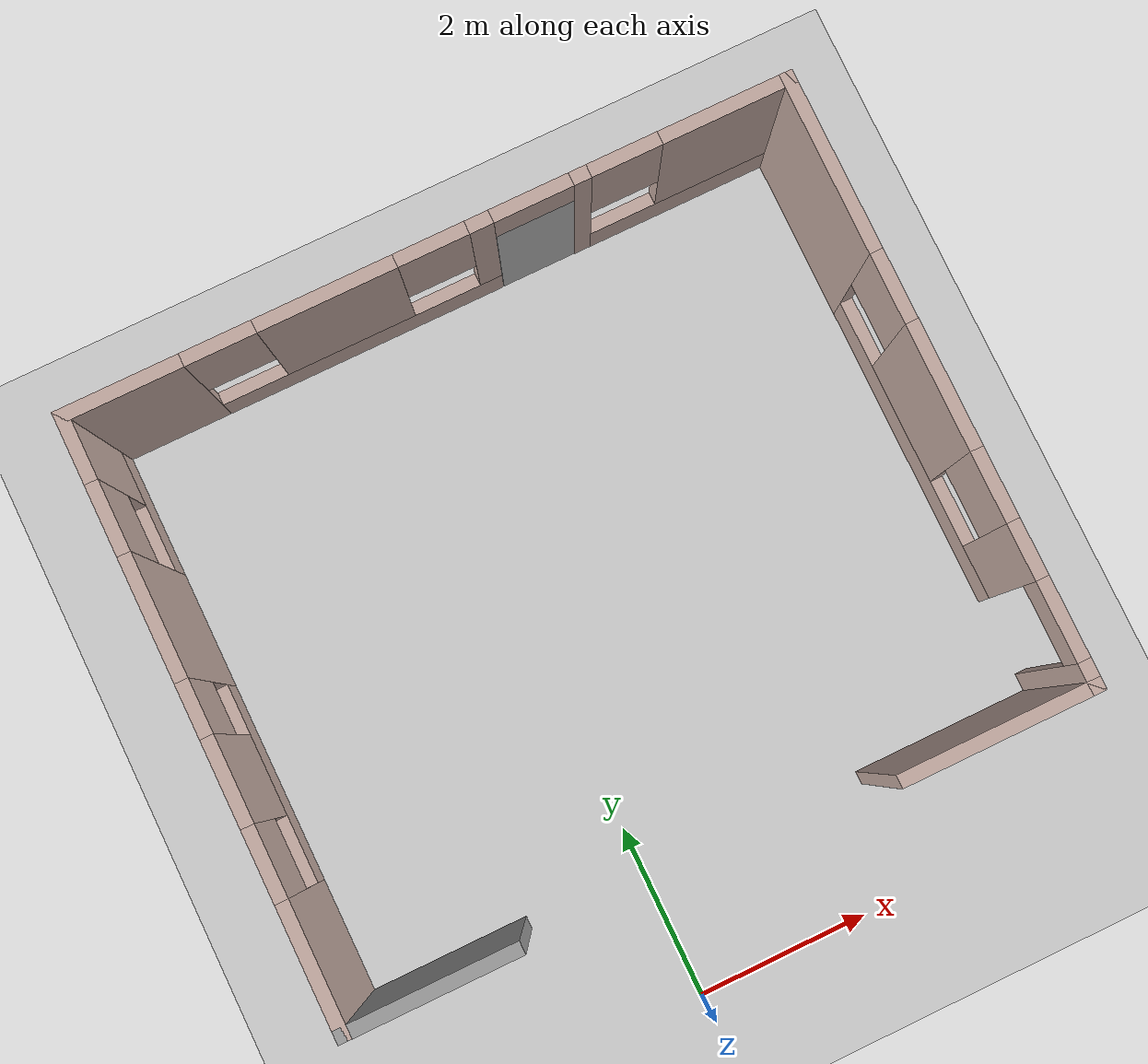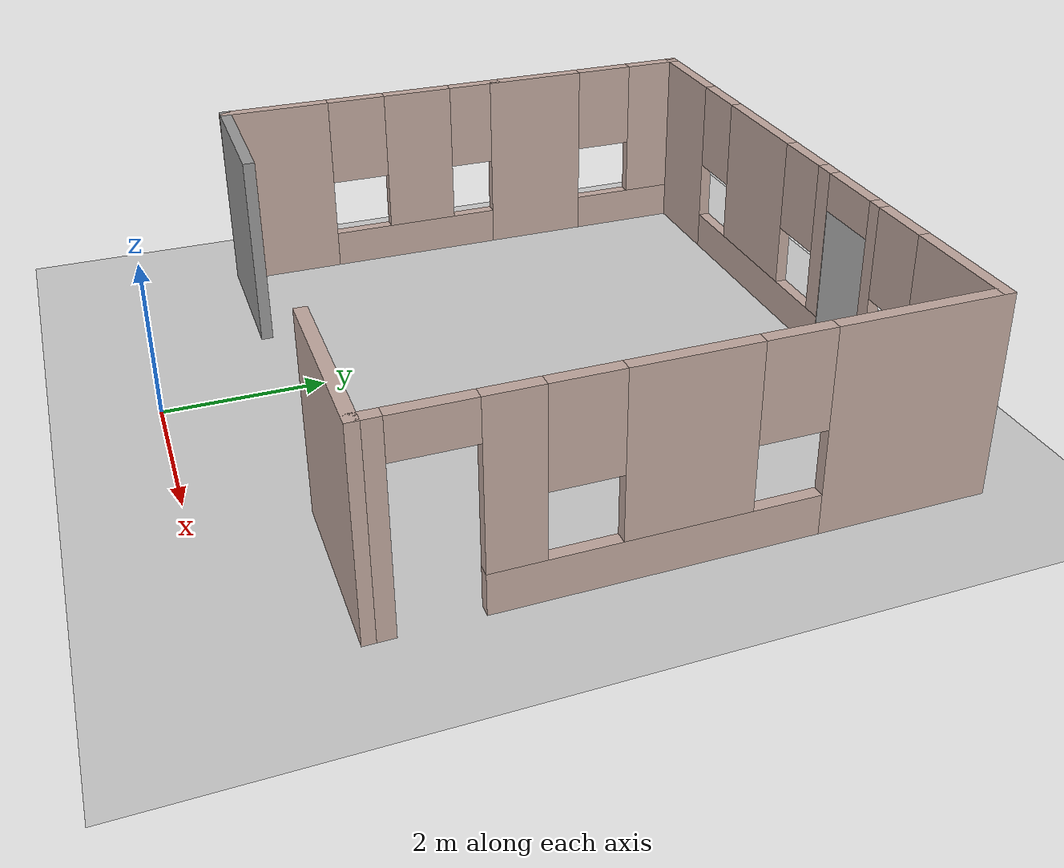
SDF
<sdf version="1.6">
 <world name="default">
  <model name="ground_plane">
   <static>1</static>
   <link name="link">
    <collision name="collision">
     <geometry><plane><normal>0 0 1</normal><size>100 100</size></plane></geometry>
     <surface><friction><ode><mu>100</mu><mu2>50</mu2></ode></friction></surface>
    </collision>
    <visual name="visual">
     <cast_shadows>0</cast_shadows>
     <geometry><plane><normal>0 0 1</normal><size>100 100</size></plane></geometry>
     <material>
      <script><uri>file://media/materials/scripts/gazebo.material</uri><name>Gazebo/Grey</name></script>
     </material>
    </visual>
   </link>
  </model>
  <model name="simpleWorld">
   <pose>0.74215 4.80433 0 0 -0 0</pose>
   <link name="Wall_10">
    <collision name="Wall_10_Collision">
     <geometry><box><size>2 0.15 2.5</size></box></geometry>
     <pose>0 0 1.25 0 -0 0</pose>
    </collision>
    <visual name="Wall_10_Visual">
     <pose>0 0 1.25 0 -0 0</pose>
     <geometry><box><size>2 0.15 2.5</size></box></geometry>
     <material>
      <script><uri>file://media/materials/scripts/gazebo.material</uri><name>Gazebo/Grey</name></script>
      <ambient>1 1 1 1</ambient>
     </material>
     <meta><layer>0</layer></meta>
    </visual>
    <pose>-3.125 -3.275 0 0 -0 0</pose>
   </link>
   <link name="Wall_3">
    <pose>-4.05 -1.35 0 0 -0 1.5708</pose>
    <visual name="Wall_3_Visual_0">
     <pose>-1.26176 0 1.25 0 -0 0</pose>
     <geometry><box><size>1.47648 0.15 2.5</size></box></geometry>
     <material>
      <script><uri>file://media/materials/scripts/gazebo.material</uri><name>Gazebo/Grey</name></script>
      <ambient>0.760784 0.662745 0.627451 1</ambient>
     </material>
     <meta><layer>0</layer></meta>
    </visual>
    <collision name="Wall_3_Collision_0">
     <geometry><box><size>1.47648 0.15 2.5</size></box></geometry>
     <pose>-1.26176 0 1.25 0 -0 0</pose>
    </collision>
    <visual name="Wall_3_Visual_1">
     <pose>0.738238 0 0.25 0 -0 0</pose>
     <geometry><box><size>2.52352 0.15 0.5</size></box></geometry>
     <material>
      <script><uri>file://media/materials/scripts/gazebo.material</uri><name>Gazebo/Grey</name></script>
      <ambient>0.760784 0.662745 0.627451 1</ambient>
     </material>
     <meta><layer>0</layer></meta>
    </visual>
    <collision name="Wall_3_Collision_1">
     <geometry><box><size>2.52352 0.15 0.5</size></box></geometry>
     <pose>0.738238 0 0.25 0 -0 0</pose>
    </collision>
    <visual name="Wall_3_Visual_2">
     <pose>0.759725 0 1.5 0 -0 0</pose>
     <geometry><box><size>0.966496 0.15 2</size></box></geometry>
     <material>
      <script><uri>file://media/materials/scripts/gazebo.material</uri><name>Gazebo/Grey</name></script>
      <ambient>0.760784 0.662745 0.627451 1</ambient>
     </material>
     <meta><layer>0</layer></meta>
    </visual>
    <collision name="Wall_3_Collision_2">
     <geometry><box><size>0.966496 0.15 2</size></box></geometry>
     <pose>0.759725 0 1.5 0 -0 0</pose>
    </collision>
    <visual name="Wall_3_Visual_3">
     <pose>0.759725 0 1.5 0 -0 0</pose>
     <geometry><box><size>0.966496 0.15 2</size></box></geometry>
     <material>
      <script><uri>file://media/materials/scripts/gazebo.material</uri><name>Gazebo/Grey</name></script>
      <ambient>0.760784 0.662745 0.627451 1</ambient>
     </material>
     <meta><layer>0</layer></meta>
    </visual>
    <collision name="Wall_3_Collision_3">
     <geometry><box><size>0.966496 0.15 2</size></box></geometry>
     <pose>0.759725 0 1.5 0 -0 0</pose>
    </collision>
    <visual name="Wall_3_Visual_4">
     <pose>-0.123523 0 1.9 0 -0 0</pose>
     <geometry><box><size>0.8 0.15 1.2</size></box></geometry>
     <material>
      <script><uri>file://media/materials/scripts/gazebo.material</uri><name>Gazebo/Grey</name></script>
      <ambient>0.760784 0.662745 0.627451 1</ambient>
     </material>
     <meta><layer>0</layer></meta>
    </visual>
    <collision name="Wall_3_Collision_4">
     <geometry><box><size>0.8 0.15 1.2</size></box></geometry>
     <pose>-0.123523 0 1.9 0 -0 0</pose>
    </collision>
    <visual name="Wall_3_Visual_5">
     <pose>1.62149 0 1.9 0 -0 0</pose>
     <geometry><box><size>0.757027 0.15 1.2</size></box></geometry>
     <material>
      <script><uri>file://media/materials/scripts/gazebo.material</uri><name>Gazebo/Grey</name></script>
      <ambient>0.760784 0.662745 0.627451 1</ambient>
     </material>
     <meta><layer>0</layer></meta>
    </visual>
    <collision name="Wall_3_Collision_5">
     <geometry><box><size>0.757027 0.15 1.2</size></box></geometry>
     <pose>1.62149 0 1.9 0 -0 0</pose>
    </collision>
    <visual name="Wall_3_Visual_6">
     <pose>1.62149 0 1.9 0 -0 0</pose>
     <geometry><box><size>0.757027 0.15 1.2</size></box></geometry>
     <material>
      <script><uri>file://media/materials/scripts/gazebo.material</uri><name>Gazebo/Grey</name></script>
      <ambient>0.760784 0.662745 0.627451 1</ambient>
     </material>
     <meta><layer>0</layer></meta>
    </visual>
    <collision name="Wall_3_Collision_6">
     <geometry><box><size>0.757027 0.15 1.2</size></box></geometry>
     <pose>1.62149 0 1.9 0 -0 0</pose>
    </collision>
   </link>
   <link name="Wall_5">
    <pose>-4.05 2 0 0 -0 1.5708</pose>
    <visual name="Wall_5_Visual_0">
     <pose>-0.80658 0 1.25 0 -0 0</pose>
     <geometry><box><size>1.38684 0.15 2.5</size></box></geometry>
     <material>
      <script><uri>file://media/materials/scripts/gazebo.material</uri><name>Gazebo/Grey</name></script>
      <ambient>0.760784 0.662745 0.627451 1</ambient>
     </material>
     <meta><layer>0</layer></meta>
    </visual>
    <collision name="Wall_5_Collision_0">
     <geometry><box><size>1.38684 0.15 2.5</size></box></geometry>
     <pose>-0.80658 0 1.25 0 -0 0</pose>
    </collision>
    <visual name="Wall_5_Visual_1">
     <pose>0.69342 0 0.25 0 -0 0</pose>
     <geometry><box><size>1.61316 0.15 0.5</size></box></geometry>
     <material>
      <script><uri>file://media/materials/scripts/gazebo.material</uri><name>Gazebo/Grey</name></script>
      <ambient>0.760784 0.662745 0.627451 1</ambient>
     </material>
     <meta><layer>0</layer></meta>
    </visual>
    <collision name="Wall_5_Collision_1">
     <geometry><box><size>1.61316 0.15 0.5</size></box></geometry>
     <pose>0.69342 0 0.25 0 -0 0</pose>
    </collision>
    <visual name="Wall_5_Visual_2">
     <pose>1.09342 0 1.5 0 -0 0</pose>
     <geometry><box><size>0.81316 0.15 2</size></box></geometry>
     <material>
      <script><uri>file://media/materials/scripts/gazebo.material</uri><name>Gazebo/Grey</name></script>
      <ambient>0.760784 0.662745 0.627451 1</ambient>
     </material>
     <meta><layer>0</layer></meta>
    </visual>
    <collision name="Wall_5_Collision_2">
     <geometry><box><size>0.81316 0.15 2</size></box></geometry>
     <pose>1.09342 0 1.5 0 -0 0</pose>
    </collision>
    <visual name="Wall_5_Visual_3">
     <pose>0.28684 0 1.9 0 -0 0</pose>
     <geometry><box><size>0.8 0.15 1.2</size></box></geometry>
     <material>
      <script><uri>file://media/materials/scripts/gazebo.material</uri><name>Gazebo/Grey</name></script>
      <ambient>0.760784 0.662745 0.627451 1</ambient>
     </material>
     <meta><layer>0</layer></meta>
    </visual>
    <collision name="Wall_5_Collision_3">
     <geometry><box><size>0.8 0.15 1.2</size></box></geometry>
     <pose>0.28684 0 1.9 0 -0 0</pose>
    </collision>
   </link>
   <link name="Wall_6">
    <pose>0 3.425 0 0 -0 0</pose>
    <visual name="Wall_6_Visual_0">
     <pose>-3.43049 0 1.25 0 -0 0</pose>
     <geometry><box><size>1.38903 0.15 2.5</size></box></geometry>
     <material>
      <script><uri>file://media/materials/scripts/gazebo.material</uri><name>Gazebo/Grey</name></script>
      <ambient>0.760784 0.662745 0.627451 1</ambient>
     </material>
     <meta><layer>0</layer></meta>
    </visual>
    <collision name="Wall_6_Collision_0">
     <geometry><box><size>1.38903 0.15 2.5</size></box></geometry>
     <pose>-3.43049 0 1.25 0 -0 0</pose>
    </collision>
    <visual name="Wall_6_Visual_1">
     <pose>1.69425 0 1.25 0 -0 0</pose>
     <geometry><box><size>0.199404 0.15 2.5</size></box></geometry>
     <material>
      <script><uri>file://media/materials/scripts/gazebo.material</uri><name>Gazebo/Grey</name></script>
      <ambient>0.760784 0.662745 0.627451 1</ambient>
     </material>
     <meta><layer>0</layer></meta>
    </visual>
    <collision name="Wall_6_Collision_1">
     <geometry><box><size>0.199404 0.15 2.5</size></box></geometry>
     <pose>1.69425 0 1.25 0 -0 0</pose>
    </collision>
    <visual name="Wall_6_Visual_2">
     <pose>-1.02071 0 0.25 0 -0 0</pose>
     <geometry><box><size>3.43052 0.15 0.5</size></box></geometry>
     <material>
      <script><uri>file://media/materials/scripts/gazebo.material</uri><name>Gazebo/Grey</name></script>
      <ambient>0.760784 0.662745 0.627451 1</ambient>
     </material>
     <meta><layer>0</layer></meta>
    </visual>
    <collision name="Wall_6_Collision_2">
     <geometry><box><size>3.43052 0.15 0.5</size></box></geometry>
     <pose>-1.02071 0 0.25 0 -0 0</pose>
    </collision>
    <visual name="Wall_6_Visual_3">
     <pose>2.95948 0 0.25 0 -0 0</pose>
     <geometry><box><size>2.33105 0.15 0.5</size></box></geometry>
     <material>
      <script><uri>file://media/materials/scripts/gazebo.material</uri><name>Gazebo/Grey</name></script>
      <ambient>0.760784 0.662745 0.627451 1</ambient>
     </material>
     <meta><layer>0</layer></meta>
    </visual>
    <collision name="Wall_6_Collision_3">
     <geometry><box><size>2.33105 0.15 0.5</size></box></geometry>
     <pose>2.95948 0 0.25 0 -0 0</pose>
    </collision>
    <visual name="Wall_6_Visual_4">
     <pose>-1.15539 0 1.5 0 -0 0</pose>
     <geometry><box><size>1.56116 0.15 2</size></box></geometry>
     <material>
      <script><uri>file://media/materials/scripts/gazebo.material</uri><name>Gazebo/Grey</name></script>
      <ambient>0.760784 0.662745 0.627451 1</ambient>
     </material>
     <meta><layer>0</layer></meta>
    </visual>
    <collision name="Wall_6_Collision_4">
     <geometry><box><size>1.56116 0.15 2</size></box></geometry>
     <pose>-1.15539 0 1.5 0 -0 0</pose>
    </collision>
    <visual name="Wall_6_Visual_5">
     <pose>0.559867 0 1.5 0 -0 0</pose>
     <geometry><box><size>0.269364 0.15 2</size></box></geometry>
     <material>
      <script><uri>file://media/materials/scripts/gazebo.material</uri><name>Gazebo/Grey</name></script>
      <ambient>0.760784 0.662745 0.627451 1</ambient>
     </material>
     <meta><layer>0</layer></meta>
    </visual>
    <collision name="Wall_6_Collision_5">
     <geometry><box><size>0.269364 0.15 2</size></box></geometry>
     <pose>0.559867 0 1.5 0 -0 0</pose>
    </collision>
    <visual name="Wall_6_Visual_6">
     <pose>0.559867 0 1.5 0 -0 0</pose>
     <geometry><box><size>0.269364 0.15 2</size></box></geometry>
     <material>
      <script><uri>file://media/materials/scripts/gazebo.material</uri><name>Gazebo/Grey</name></script>
      <ambient>0.760784 0.662745 0.627451 1</ambient>
     </material>
     <meta><layer>0</layer></meta>
    </visual>
    <collision name="Wall_6_Collision_6">
     <geometry><box><size>0.269364 0.15 2</size></box></geometry>
     <pose>0.559867 0 1.5 0 -0 0</pose>
    </collision>
    <visual name="Wall_6_Visual_7">
     <pose>3.35948 0 1.5 0 -0 0</pose>
     <geometry><box><size>1.53105 0.15 2</size></box></geometry>
     <material>
      <script><uri>file://media/materials/scripts/gazebo.material</uri><name>Gazebo/Grey</name></script>
      <ambient>0.760784 0.662745 0.627451 1</ambient>
     </material>
     <meta><layer>0</layer></meta>
    </visual>
    <collision name="Wall_6_Collision_7">
     <geometry><box><size>1.53105 0.15 2</size></box></geometry>
     <pose>3.35948 0 1.5 0 -0 0</pose>
    </collision>
    <visual name="Wall_6_Visual_8">
     <pose>-2.33597 0 1.9 0 -0 0</pose>
     <geometry><box><size>0.8 0.15 1.2</size></box></geometry>
     <material>
      <script><uri>file://media/materials/scripts/gazebo.material</uri><name>Gazebo/Grey</name></script>
      <ambient>0.760784 0.662745 0.627451 1</ambient>
     </material>
     <meta><layer>0</layer></meta>
    </visual>
    <collision name="Wall_6_Collision_8">
     <geometry><box><size>0.8 0.15 1.2</size></box></geometry>
     <pose>-2.33597 0 1.9 0 -0 0</pose>
    </collision>
    <visual name="Wall_6_Visual_9">
     <pose>2.19395 0 1.9 0 -0 0</pose>
     <geometry><box><size>0.8 0.15 1.2</size></box></geometry>
     <material>
      <script><uri>file://media/materials/scripts/gazebo.material</uri><name>Gazebo/Grey</name></script>
      <ambient>0.760784 0.662745 0.627451 1</ambient>
     </material>
     <meta><layer>0</layer></meta>
    </visual>
    <collision name="Wall_6_Collision_9">
     <geometry><box><size>0.8 0.15 1.2</size></box></geometry>
     <pose>2.19395 0 1.9 0 -0 0</pose>
    </collision>
    <visual name="Wall_6_Visual_10">
     <pose>0.025185 0 1.9 0 -0 0</pose>
     <geometry><box><size>0.8 0.15 1.2</size></box></geometry>
     <material>
      <script><uri>file://media/materials/scripts/gazebo.material</uri><name>Gazebo/Grey</name></script>
      <ambient>0.760784 0.662745 0.627451 1</ambient>
     </material>
     <meta><layer>0</layer></meta>
    </visual>
    <collision name="Wall_6_Collision_10">
     <geometry><box><size>0.8 0.15 1.2</size></box></geometry>
     <pose>0.025185 0 1.9 0 -0 0</pose>
    </collision>
    <visual name="Wall_6_Visual_11">
     <pose>1.14455 0 2.25 0 -0 0</pose>
     <geometry><box><size>0.9 0.15 0.5</size></box></geometry>
     <material>
      <script><uri>file://media/materials/scripts/gazebo.material</uri><name>Gazebo/Grey</name></script>
      <ambient>0.760784 0.662745 0.627451 1</ambient>
     </material>
     <meta><layer>0</layer></meta>
    </visual>
    <collision name="Wall_6_Collision_11">
     <geometry><box><size>0.9 0.15 0.5</size></box></geometry>
     <pose>1.14455 0 2.25 0 -0 0</pose>
    </collision>
    <visual name="Wall_6_Visual_12">
     <pose>1.14455 0 2.25 0 -0 0</pose>
     <geometry><box><size>0.9 0.15 0.5</size></box></geometry>
     <material>
      <script><uri>file://media/materials/scripts/gazebo.material</uri><name>Gazebo/Grey</name></script>
      <ambient>0.760784 0.662745 0.627451 1</ambient>
     </material>
     <meta><layer>0</layer></meta>
    </visual>
    <collision name="Wall_6_Collision_12">
     <geometry><box><size>0.9 0.15 0.5</size></box></geometry>
     <pose>1.14455 0 2.25 0 -0 0</pose>
    </collision>
   </link>
   <link name="Wall_7">
    <pose>4.05 0 0 0 -0 -1.5708</pose>
    <visual name="Wall_7_Visual_0">
     <pose>-2.46378 0 1.25 0 -0 0</pose>
     <geometry><box><size>2.07245 0.15 2.5</size></box></geometry>
     <material>
      <script><uri>file://media/materials/scripts/gazebo.material</uri><name>Gazebo/Grey</name></script>
      <ambient>0.760784 0.662745 0.627451 1</ambient>
     </material>
     <meta><layer>0</layer></meta>
    </visual>
    <collision name="Wall_7_Collision_0">
     <geometry><box><size>2.07245 0.15 2.5</size></box></geometry>
     <pose>-2.46378 0 1.25 0 -0 0</pose>
    </collision>
    <visual name="Wall_7_Visual_1">
     <pose>3.32391 0 1.25 0 -0 0</pose>
     <geometry><box><size>0.352172 0.15 2.5</size></box></geometry>
     <material>
      <script><uri>file://media/materials/scripts/gazebo.material</uri><name>Gazebo/Grey</name></script>
      <ambient>0.760784 0.662745 0.627451 1</ambient>
     </material>
     <meta><layer>0</layer></meta>
    </visual>
    <collision name="Wall_7_Collision_1">
     <geometry><box><size>0.352172 0.15 2.5</size></box></geometry>
     <pose>3.32391 0 1.25 0 -0 0</pose>
    </collision>
    <visual name="Wall_7_Visual_2">
     <pose>0.410136 0 0.25 0 -0 0</pose>
     <geometry><box><size>3.67538 0.15 0.5</size></box></geometry>
     <material>
      <script><uri>file://media/materials/scripts/gazebo.material</uri><name>Gazebo/Grey</name></script>
      <ambient>0.760784 0.662745 0.627451 1</ambient>
     </material>
     <meta><layer>0</layer></meta>
    </visual>
    <collision name="Wall_7_Collision_2">
     <geometry><box><size>3.67538 0.15 0.5</size></box></geometry>
     <pose>0.410136 0 0.25 0 -0 0</pose>
    </collision>
    <visual name="Wall_7_Visual_3">
     <pose>0.091809 0 1.5 0 -0 0</pose>
     <geometry><box><size>1.43873 0.15 2</size></box></geometry>
     <material>
      <script><uri>file://media/materials/scripts/gazebo.material</uri><name>Gazebo/Grey</name></script>
      <ambient>0.760784 0.662745 0.627451 1</ambient>
     </material>
     <meta><layer>0</layer></meta>
    </visual>
    <collision name="Wall_7_Collision_3">
     <geometry><box><size>1.43873 0.15 2</size></box></geometry>
     <pose>0.091809 0 1.5 0 -0 0</pose>
    </collision>
    <visual name="Wall_7_Visual_4">
     <pose>1.9295 0 1.5 0 -0 0</pose>
     <geometry><box><size>0.636655 0.15 2</size></box></geometry>
     <material>
      <script><uri>file://media/materials/scripts/gazebo.material</uri><name>Gazebo/Grey</name></script>
      <ambient>0.760784 0.662745 0.627451 1</ambient>
     </material>
     <meta><layer>0</layer></meta>
    </visual>
    <collision name="Wall_7_Collision_4">
     <geometry><box><size>0.636655 0.15 2</size></box></geometry>
     <pose>1.9295 0 1.5 0 -0 0</pose>
    </collision>
    <visual name="Wall_7_Visual_5">
     <pose>-1.02755 0 1.9 0 -0 0</pose>
     <geometry><box><size>0.8 0.15 1.2</size></box></geometry>
     <material>
      <script><uri>file://media/materials/scripts/gazebo.material</uri><name>Gazebo/Grey</name></script>
      <ambient>0.760784 0.662745 0.627451 1</ambient>
     </material>
     <meta><layer>0</layer></meta>
    </visual>
    <collision name="Wall_7_Collision_5">
     <geometry><box><size>0.8 0.15 1.2</size></box></geometry>
     <pose>-1.02755 0 1.9 0 -0 0</pose>
    </collision>
    <visual name="Wall_7_Visual_6">
     <pose>1.21117 0 1.9 0 -0 0</pose>
     <geometry><box><size>0.8 0.15 1.2</size></box></geometry>
     <material>
      <script><uri>file://media/materials/scripts/gazebo.material</uri><name>Gazebo/Grey</name></script>
      <ambient>0.760784 0.662745 0.627451 1</ambient>
     </material>
     <meta><layer>0</layer></meta>
    </visual>
    <collision name="Wall_7_Collision_6">
     <geometry><box><size>0.8 0.15 1.2</size></box></geometry>
     <pose>1.21117 0 1.9 0 -0 0</pose>
    </collision>
    <visual name="Wall_7_Visual_7">
     <pose>2.69783 0 2.25 0 -0 0</pose>
     <geometry><box><size>0.9 0.15 0.5</size></box></geometry>
     <material>
      <script><uri>file://media/materials/scripts/gazebo.material</uri><name>Gazebo/Grey</name></script>
      <ambient>0.760784 0.662745 0.627451 1</ambient>
     </material>
     <meta><layer>0</layer></meta>
    </visual>
    <collision name="Wall_7_Collision_7">
     <geometry><box><size>0.9 0.15 0.5</size></box></geometry>
     <pose>2.69783 0 2.25 0 -0 0</pose>
    </collision>
   </link>
   <link name="Wall_8">
    <collision name="Wall_8_Collision">
     <geometry><box><size>2.25 0.15 2.5</size></box></geometry>
     <pose>0 0 1.25 0 -0 0</pose>
    </collision>
    <visual name="Wall_8_Visual">
     <pose>0 0 1.25 0 -0 0</pose>
     <geometry><box><size>2.25 0.15 2.5</size></box></geometry>
     <material>
      <script><uri>file://media/materials/scripts/gazebo.material</uri><name>Gazebo/Grey</name></script>
      <ambient>0.760784 0.662745 0.627451 1</ambient>
     </material>
     <meta><layer>0</layer></meta>
    </visual>
    <pose>3 -3.425 0 0 -0 3.14159</pose>
   </link>
   <static>1</static>
  </model>
  <model name="door_0">
   <link name="link_0">
    <visual name="visual">
     <pose>0 0 1 0 -0 0</pose>
     <geometry><box><size>0.9 0.15 2</size></box></geometry>
     <material>
      <script>
       <uri>model://door/materials/scripts</uri>
       <uri>model://door/materials/textures</uri>
       <name>door</name>
      </script>
     </material>
    </visual>
    <collision name="collision">
     <pose>0 0 1 0 -0 0</pose>
     <geometry><box><size>0.9 0.15 2</size></box></geometry>
    </collision>
   </link>
   <static>1</static>
   <pose>1.89145 8.23404 0 0 -0 0</pose>
  </model>
 </world>
</sdf>
